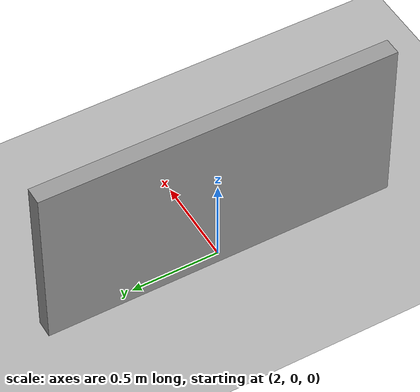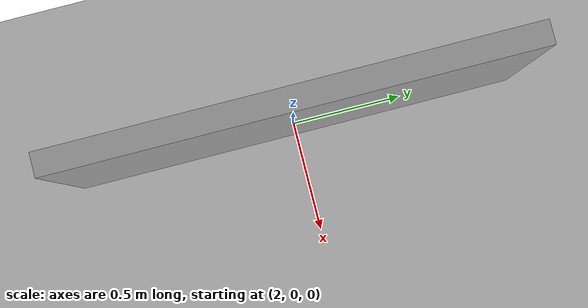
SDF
<?xml version="1.0"?>
<sdf version="1.9">
  <world name="ci_test_world">

    <physics name="default_physics" type="gz-physics">
      <max_step_size>0.001</max_step_size>
      <real_time_factor>1.0</real_time_factor>
    </physics>

    <plugin
      filename="gz-sim-physics-system"
      name="gz::sim::systems::Physics"/>

    <plugin
      filename="gz-sim-user-commands-system"
      name="gz::sim::systems::UserCommands"/>

    <plugin
      filename="gz-sim-scene-broadcaster-system"
      name="gz::sim::systems::SceneBroadcaster"/>

    <plugin
      filename="gz-sim-sensors-system"
      name="gz::sim::systems::Sensors">
      <render_engine>ogre2</render_engine>
    </plugin>

    <light type="directional" name="sun">
      <cast_shadows>true</cast_shadows>
      <pose>0 0 10 0 0 0</pose>

      <diffuse>0.8 0.8 0.8 1</diffuse>
      <specular>0.2 0.2 0.2 1</specular>

      <direction>-0.5 0.1 -0.9</direction>
    </light>

    <model name="ground_plane">
      <static>true</static>

      <link name="link">
        <collision name="collision">
          <geometry>
            <plane>
              <normal>0 0 1</normal>
              <size>20 20</size>
            </plane>
          </geometry>
        </collision>

        <visual name="visual">
          <geometry>
            <plane>
              <normal>0 0 1</normal>
              <size>20 20</size>
            </plane>
          </geometry>

          <material>
            <ambient>0.7 0.7 0.7 1</ambient>
            <diffuse>0.7 0.7 0.7 1</diffuse>
          </material>
        </visual>
      </link>
    </model>

    <model name="lidar_test_wall">
      <static>true</static>
      <pose>2.0 0 0.5 0 0 0</pose>

      <link name="wall_link">
        <collision name="collision">
          <geometry>
            <box>
              <size>0.10 2.0 1.0</size>
            </box>
          </geometry>
        </collision>

        <visual name="visual">
          <geometry>
            <box>
              <size>0.10 2.0 1.0</size>
            </box>
          </geometry>

          <material>
            <ambient>0.6 0.6 0.6 1</ambient>
            <diffuse>0.6 0.6 0.6 1</diffuse>
          </material>
        </visual>
      </link>
    </model>

  </world>
</sdf>
